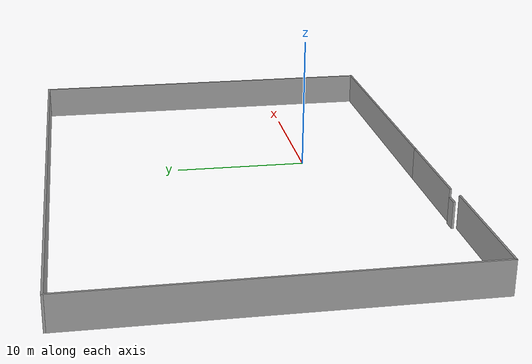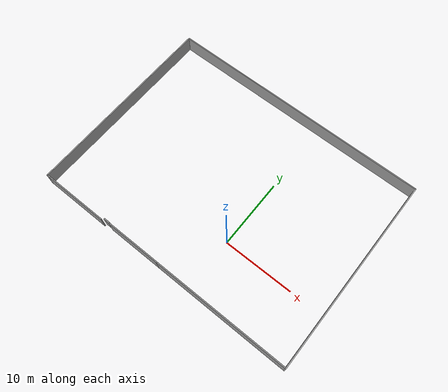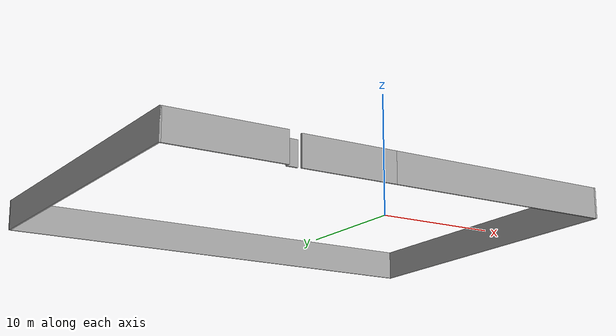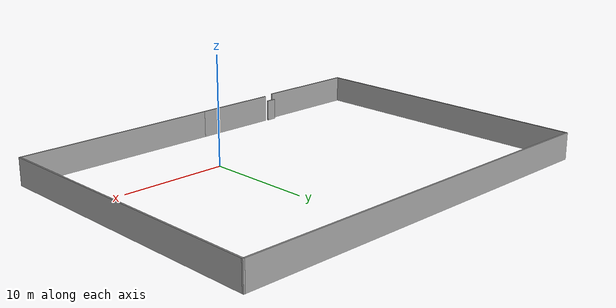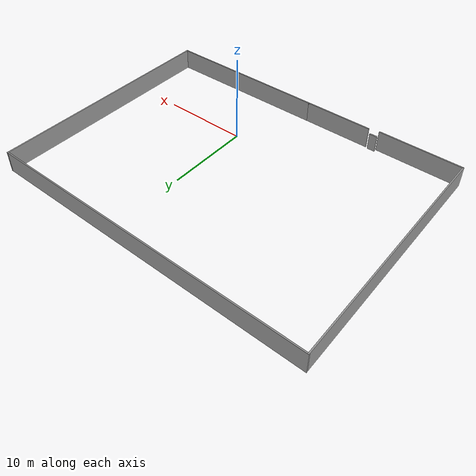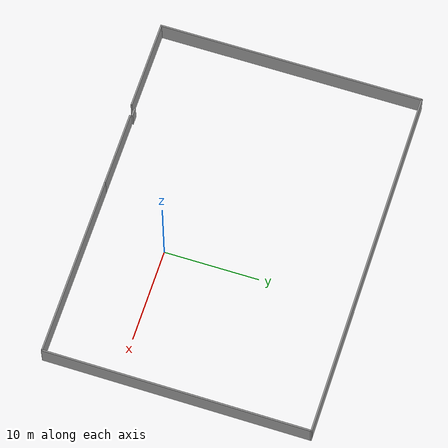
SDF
<?xml version='1.0'?>
<sdf version='1.6'>
  <model name='gujarong'>
    <pose frame=''>-4.23955 6.02192 0 0 -0 0</pose>
    <link name='Door_1'>
      <collision name='Door_1_Collision'>
        <geometry>
          <box>
            <size>0.9 0.17 2</size>
          </box>
        </geometry>
        <pose frame=''>0 0 1 0 -0 0</pose>
      </collision>
      <visual name='Door_1_Visual'>
        <pose frame=''>0 0 1 0 -0 0</pose>
        <geometry>
          <box>
            <size>0.9 0.17 2</size>
          </box>
        </geometry>
        <material>
          <script>
            <uri>file://media/materials/scripts/gazebo.material</uri>
            <name>Gazebo/Grey</name>
          </script>
        </material>
      </visual>
      <pose frame=''>-8.92393 -13.6945 0 0 -0 0</pose>
    </link>
    <link name='Wall_1'>
      <collision name='Wall_1_Collision'>
        <geometry>
          <box>
            <size>8 0.15 2.5</size>
          </box>
        </geometry>
        <pose frame=''>0 0 1.25 0 -0 0</pose>
      </collision>
      <visual name='Wall_1_Visual'>
        <pose frame=''>0 0 1.25 0 -0 0</pose>
        <geometry>
          <box>
            <size>8 0.15 2.5</size>
          </box>
        </geometry>
        <material>
          <script>
            <uri>file://media/materials/scripts/gazebo.material</uri>
            <name>Gazebo/Grey</name>
          </script>
          <ambient>1 1 1 1</ambient>
        </material>
        <meta>
          <layer>0</layer>
        </meta>
      </visual>
      <pose frame=''>-4.225 -13.8 0 0 -0 0</pose>
    </link>
    <link name='Wall_2'>
      <collision name='Wall_2_Collision'>
        <geometry>
          <box>
            <size>19.5 0.15 2.5</size>
          </box>
        </geometry>
        <pose frame=''>0 0 1.25 0 -0 0</pose>
      </collision>
      <visual name='Wall_2_Visual'>
        <pose frame=''>0 0 1.25 0 -0 0</pose>
        <geometry>
          <box>
            <size>19.5 0.15 2.5</size>
          </box>
        </geometry>
        <material>
          <script>
            <uri>file://media/materials/scripts/gazebo.material</uri>
            <name>Gazebo/Grey</name>
          </script>
          <ambient>1 1 1 1</ambient>
        </material>
        <meta>
          <layer>0</layer>
        </meta>
      </visual>
      <pose frame=''>9.375 -13.8 0 0 -0 0</pose>
    </link>
    <link name='Wall_3'>
      <collision name='Wall_3_Collision'>
        <geometry>
          <box>
            <size>28 0.15 2.5</size>
          </box>
        </geometry>
        <pose frame=''>0 0 1.25 0 -0 0</pose>
      </collision>
      <visual name='Wall_3_Visual'>
        <pose frame=''>0 0 1.25 0 -0 0</pose>
        <geometry>
          <box>
            <size>28 0.15 2.5</size>
          </box>
        </geometry>
        <material>
          <script>
            <uri>file://media/materials/scripts/gazebo.material</uri>
            <name>Gazebo/Grey</name>
          </script>
          <ambient>1 1 1 1</ambient>
        </material>
        <meta>
          <layer>0</layer>
        </meta>
      </visual>
      <pose frame=''>19.05 0.125 0 0 -0 1.5708</pose>
    </link>
    <link name='Wall_4'>
      <collision name='Wall_4_Collision'>
        <geometry>
          <box>
            <size>38.25 0.15 2.5</size>
          </box>
        </geometry>
        <pose frame=''>0 0 1.25 0 -0 0</pose>
      </collision>
      <visual name='Wall_4_Visual'>
        <pose frame=''>0 0 1.25 0 -0 0</pose>
        <geometry>
          <box>
            <size>38.25 0.15 2.5</size>
          </box>
        </geometry>
        <material>
          <script>
            <uri>file://media/materials/scripts/gazebo.material</uri>
            <name>Gazebo/Grey</name>
          </script>
          <ambient>1 1 1 1</ambient>
        </material>
        <meta>
          <layer>0</layer>
        </meta>
      </visual>
      <pose frame=''>-0 14.05 0 0 -0 3.14159</pose>
    </link>
    <link name='Wall_5'>
      <collision name='Wall_5_Collision'>
        <geometry>
          <box>
            <size>28.25 0.15 2.5</size>
          </box>
        </geometry>
        <pose frame=''>0 0 1.25 0 -0 0</pose>
      </collision>
      <visual name='Wall_5_Visual'>
        <pose frame=''>0 0 1.25 0 -0 0</pose>
        <geometry>
          <box>
            <size>28.25 0.15 2.5</size>
          </box>
        </geometry>
        <material>
          <script>
            <uri>file://media/materials/scripts/gazebo.material</uri>
            <name>Gazebo/Grey</name>
          </script>
          <ambient>1 1 1 1</ambient>
        </material>
        <meta>
          <layer>0</layer>
        </meta>
      </visual>
      <pose frame=''>-19.05 0 0 0 -0 -1.5708</pose>
    </link>
    <link name='Wall_6'>
      <collision name='Wall_6_Collision'>
        <geometry>
          <box>
            <size>9.75 0.15 2.5</size>
          </box>
        </geometry>
        <pose frame=''>0 0 1.25 0 -0 0</pose>
      </collision>
      <visual name='Wall_6_Visual'>
        <pose frame=''>0 0 1.25 0 -0 0</pose>
        <geometry>
          <box>
            <size>9.75 0.15 2.5</size>
          </box>
        </geometry>
        <material>
          <script>
            <uri>file://media/materials/scripts/gazebo.material</uri>
            <name>Gazebo/Grey</name>
          </script>
          <ambient>1 1 1 1</ambient>
        </material>
        <meta>
          <layer>0</layer>
        </meta>
      </visual>
      <pose frame=''>-14.25 -14.05 0 0 -0 0</pose>
    </link>
    <static>1</static>
  </model>
</sdf>
